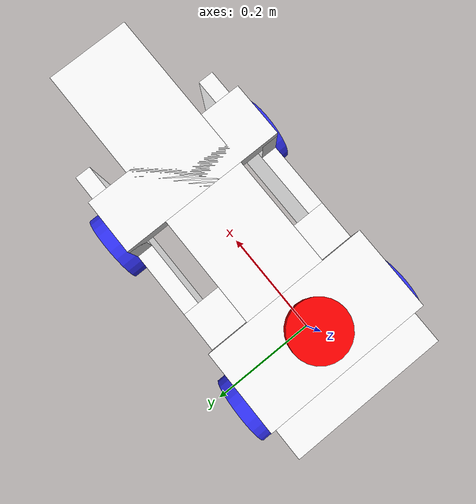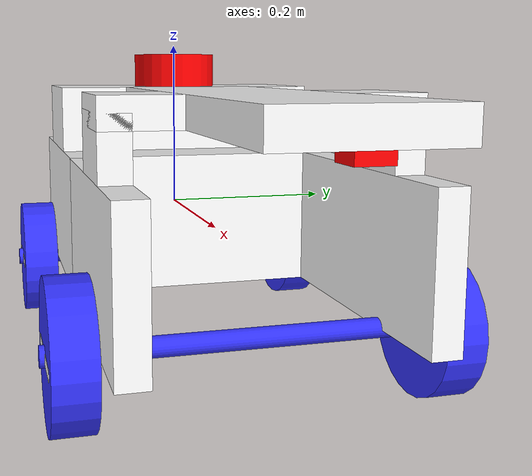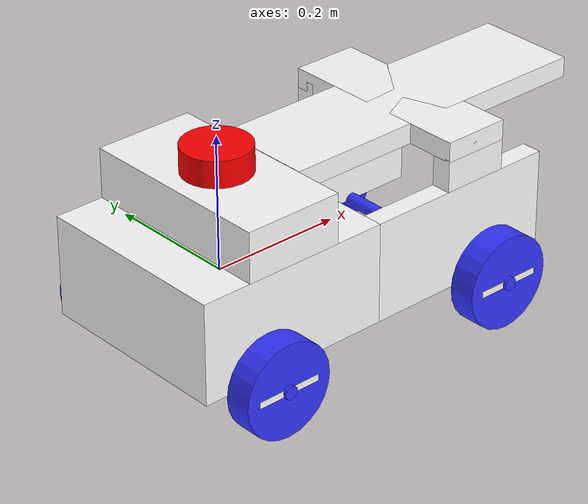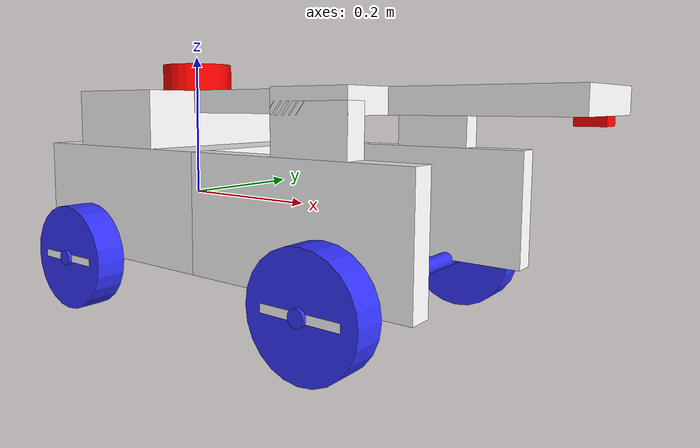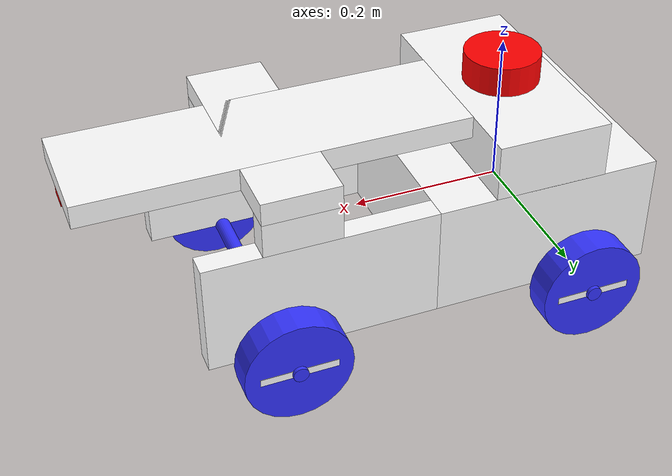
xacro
<?xml version="1.0"?>
<robot xmlns:xacro="http://www.ros.org/wiki/xacro"  name="nav_robot">

    <xacro:include filename="robot_core.xacro"/>
    <xacro:include filename="gazebo_control.xacro"/>
    <xacro:include filename="lidar.xacro"/>
    <xacro:include filename="camera.xacro"/>

</robot>

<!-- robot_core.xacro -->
<robot xmlns:xacro="http://www.ros.org/wiki/xacro">

    <xacro:include filename="$(find navigation_bot)/description/inertial_macros.xacro"/>
<!--================================================================ COLOURS ==================================================================================================== -->

    <material name="white">
        <color rgba="1 1 1 1"/>
    </material>

    <material name="orange">
        <color rgba="1 0.3 0.1 1"/>
    </material>

    <material name="blue">
        <color rgba="0.2 0.2 1 1"/>
    </material>

    <material name="red">
        <color rgba="1 0 0 1"/>
    </material>

    <material name="black">
        <color rgba="0 0 0 1"/>
    </material>

<!--================================================================ LINKS ====================================================================================================== -->

    <link name="origin"> <!-- base_link LINK -->
        <visual>
            <geometry>
                <box size="0.3 0.3 0.15"/>
            </geometry>
            <material name="white"/>
        </visual>
        <collision>
            <geometry>
                <box size="0.3 0.3 0.15"/>
            </geometry>
        </collision>
        <xacro:inertial_box mass="0.5" x="0.3" y="0.3" z="0.15">
            <origin xyz="0 0 0" rpy="0 0 0"/>
        </xacro:inertial_box>
    </link>

    <link name="base_link"> <!-- base_link LINK -->
    </link>

    <link name="Back_base_link">
        <visual>
            <origin xyz="0 0 0" rpy="${pi/2} 0 0"/>
            <axis xyz ="0 0 1"/>
            <geometry>
                <cylinder radius= "0.01" length="0.4"/>
            </geometry>
            <material name="blue"/>
        </visual>
    </link>

    <link name="Front_base_link">
        <visual>
            <origin xyz="0 0 0" rpy="${pi/2} 0 0"/>
            <axis xyz ="0 0 1"/>
            <geometry>
                <cylinder radius= "0.01" length="0.4"/>
            </geometry>
            <material name="blue"/>
        </visual>
    </link>

    <link name="LeftFront_wheel_support">
        <visual>
            <geometry>
                <box size="0.3 0.15 0.03"/>
            </geometry>
            <material name="white"/>
        </visual>
        <collision>
            <geometry>
                <box size="0.3 0.15 0.03"/>
            </geometry>
        </collision>
        <xacro:inertial_box mass="0.32" x="0.3" y="0.3" z="0.15">
            <origin xyz="0 0 0" rpy="0 0 0"/>
        </xacro:inertial_box>
    </link>

    <link name="RightFront_wheel_support">
        <visual>
            <geometry>
                <box size="0.3 0.15 0.03"/>
            </geometry>
            <material name="white"/>
        </visual>
        <collision>
            <geometry>
                <box size="0.3 0.15 0.03"/>
            </geometry>
        </collision>
        <xacro:inertial_box mass="0.32" x="0.3" y="0.3" z="0.15">
            <origin xyz="0 0 0" rpy="0 0 0"/>
        </xacro:inertial_box>
    </link>

    <link name="back_left_wheel">
        <visual>
            <geometry>
                <cylinder radius= "0.07" length="0.04"/>
            </geometry>
            <material name="blue"/>
        </visual>
        <collision>
            <geometry>
                <cylinder radius= "0.07" length="0.04"/>
            </geometry>
        </collision>
        <xacro:inertial_cylinder mass="0.1" length="0.04" radius="0.07">
            <origin xyz="0 0 0" rpy="0 0 0"/>
        </xacro:inertial_cylinder>
    </link>

    <link name="indicator_back_left_link">
        <visual>
            <geometry>
                <box size="0.1 0.01 0.001"/>
            </geometry>
            <material name="white"/>
        </visual>
    </link>

    <link name="back_right_wheel">
        <visual>
            <geometry>
                <cylinder radius= "0.07" length="0.04"/>
            </geometry>
            <material name="blue"/>
        </visual>
        <collision>
            <geometry>
                <cylinder radius= "0.07" length="0.04"/>
            </geometry>
        </collision>
        <xacro:inertial_cylinder mass="0.1" length="0.04" radius="0.07">
            <origin xyz="0 0 0" rpy="0 0 0"/>
        </xacro:inertial_cylinder>
    </link>

    <link name="indicator_back_right_link">
        <visual>
            <geometry>
                <box size="0.1 0.01 0.001"/>
            </geometry>
            <material name="white"/>
        </visual>
    </link>

    <link name="Front_left_wheel">
        <visual>
            <geometry>
                <cylinder radius= "0.07" length="0.04"/>
            </geometry>
            <material name="blue"/>
        </visual>
        <collision>
            <geometry>
                <cylinder radius= "0.07" length="0.04"/>
            </geometry>
        </collision>
        <xacro:inertial_cylinder mass="0.1" length="0.04" radius="0.07">
            <origin xyz="0 0 0" rpy="0 0 0"/>
        </xacro:inertial_cylinder>
    </link>

    <link name="Front_right_wheel">
        <visual>
            <geometry>
                <cylinder radius= "0.07" length="0.04"/>
            </geometry>
            <material name="blue"/>
        </visual>
        <collision>
            <geometry>
                <cylinder radius= "0.07" length="0.04"/>
            </geometry>
        </collision>
        <xacro:inertial_cylinder mass="0.1" length="0.04" radius="0.07">
            <origin xyz="0 0 0" rpy="0 0 0"/>
        </xacro:inertial_cylinder>
    </link>

     <link name="indicator_Front_left_link">
        <visual>
            <geometry>
                <box size="0.1 0.01 0.001"/>
            </geometry>
            <material name="white"/>
        </visual>
    </link>

    <link name="indicator_Front_right_link">
        <visual>
            <geometry>
                <box size="0.1 0.01 0.001"/>
            </geometry>
            <material name="white"/>
        </visual>
    </link>

    <link name="camera_platform_link">
        <visual>
            <geometry>
                <box size="0.5 0.15 0.03"/>
            </geometry>
            <material name="white"/>
        </visual>
        <collision>
            <geometry>
                <box size="0.5 0.15 0.03"/>
            </geometry>
        </collision>
        <xacro:inertial_box mass="0.01" x="0.3" y="0.3" z="0.15">
            <origin xyz="0 0 0" rpy="0 0 0"/>
        </xacro:inertial_box>
    </link>

    <link name="support_right">
        <visual>
            <geometry>
                <box size="0.1 0.03 0.06"/>
            </geometry>
            <material name="white"/>
        </visual>
        <collision>
            <geometry>
                <box size="0.1 0.03 0.06"/>
            </geometry>
        </collision>
        <xacro:inertial_box mass="0.5" x="0.3" y="0.3" z="0.15">
            <origin xyz="0 0 0" rpy="0 0 0"/>
        </xacro:inertial_box>
    </link>

    <link name="support_left">
        <visual>
            <geometry>
                <box size="0.1 0.03 0.06"/>
            </geometry>
            <material name="white"/>
        </visual>
        <collision>
            <geometry>
                <box size="0.1 0.03 0.06"/>
            </geometry>
        </collision>
        <xacro:inertial_box mass="0.5" x="0.3" y="0.3" z="0.15">
            <origin xyz="0 0 0" rpy="0 0 0"/>
        </xacro:inertial_box>
    </link>

    <link name="support">
        <visual>
            <geometry>
                <box size="0.1 0.3 0.03"/>
            </geometry>
            <material name="white"/>
        </visual>
    </link>

<!--================================================================ REFERENCES ================================================================================================= -->
    <gazebo reference="base_link">
        <material>Gazebo/White</material>
    </gazebo>

    <gazebo reference="Back_base_link">
        <material>Gazebo/Blue</material>
    </gazebo>

    <gazebo reference="Front_base_link">
        <material>Gazebo/Blue</material>
    </gazebo>

    <gazebo reference="LeftFront_wheel_support">
        <material>Gazebo/White</material>
    </gazebo>

    <gazebo reference="RightFront_wheel_support">
        <material>Gazebo/White</material>
    </gazebo>

    <gazebo reference="back_left_wheel">
        <mu1>1.7</mu1>
        <mu2>1.7</mu2>
        <material>Gazebo/Blue</material>
    </gazebo>

    <gazebo reference="indicator_back_left_link">
        <material>Gazebo/White</material>
    </gazebo>

    <gazebo reference="back_right_wheel">
        <mu1>1.7</mu1>
        <mu2>1.7</mu2>
        <material>Gazebo/Blue</material>
    </gazebo>

    <gazebo reference="indicator_back_right_link">
        <material>Gazebo/White</material>
    </gazebo>

    <gazebo reference="Front_left_wheel">
        <mu1>0.1</mu1>
        <mu2>0.1</mu2>
        <material>Gazebo/Blue</material>
    </gazebo>

    <gazebo reference="indicator_Front_left_link">
        <material>Gazebo/White</material>
    </gazebo>

    <gazebo reference="Front_right_wheel">
        <mu1>0.1</mu1>
        <mu2>0.1</mu2>
        <material>Gazebo/Blue</material>
    </gazebo>

    <gazebo reference="indicator_Front_right_link">
        <material>Gazebo/White</material>
    </gazebo>

    <gazebo reference="support_right">
        <material>Gazebo/White</material>
    </gazebo>

    <gazebo reference="support_left">
        <material>Gazebo/White</material>
    </gazebo>

<!--================================================================ JOINTS ===================================================================================================== -->

    <joint name="reference" type="fixed">
        <parent link="base_link"/>
        <child link="origin"/>
        <origin xyz="0.0 0 0.0"/>
    </joint>

    <joint name="Back_base_link_joint" type="fixed">
        <parent link="base_link"/>
        <child link="Back_base_link"/>
        <origin xyz="-0.05 0 -0.075"/>
    </joint>

    <joint name="Front_base_link_joint" type="fixed">
        <parent link="base_link"/>
        <child link="Front_base_link"/>
        <origin xyz="0.35 0 -0.075"/>
    </joint>

    <joint name="LeftFront_wheel_joint" type="fixed">
        <parent link="base_link"/>
        <child link="LeftFront_wheel_support"/>
        <origin xyz="0.3 -0.135 0" rpy="-${pi/2} 0 0"/>
    </joint>

    <joint name="RightFront_wheel_joint" type="fixed">
        <parent link="base_link"/>
        <child link="RightFront_wheel_support"/>
        <origin xyz="0.3 0.135 0" rpy="${pi/2} 0 0"/>
    </joint>

    <joint name="back_left_wheel_joint" type="continuous">
        <parent link="base_link"/>
        <child link="back_left_wheel"/>
        <origin xyz="-0.05 -0.175 -0.075" rpy="${pi/2} 0 0"/>
        <axis xyz ="0 0 -1"/>
    </joint>

    <joint name="indicator_back_left_joint" type="fixed">
        <parent link ="back_left_wheel"/>
        <child link ="indicator_back_left_link"/>
        <origin xyz="0 0 0.02"/>
    </joint>

    <joint name="back_right_wheel_joint" type="continuous">
        <parent link="base_link"/>
        <child link="back_right_wheel"/>
        <origin xyz="-0.05 0.175 -0.075" rpy="${pi/2} 0 0"/>
        <axis xyz ="0 0 -1"/>
    </joint>

    <joint name="indicator_back_right_joint" type="fixed">
        <parent link ="back_right_wheel"/>
        <child link ="indicator_back_right_link"/>
        <origin xyz="0 0 -0.02"/>
    </joint>

    <joint name="Front_left_wheel_joint" type="fixed">
        <parent link="base_link"/>
        <child link="Front_left_wheel"/>
        <origin xyz="0.35 -0.175 -0.075" rpy="${pi/2} 0 0"/>
        <axis xyz ="0 0 -1"/>
    </joint>

    <joint name="indicator_Front_left_joint" type="fixed">
        <parent link ="Front_left_wheel"/>
        <child link ="indicator_Front_left_link"/>
        <origin xyz="0 0 0.02"/>
    </joint>

    <joint name="Front_right_wheel_joint" type="fixed">
        <parent link="base_link"/>
        <child link="Front_right_wheel"/>
        <origin xyz="0.35 0.175 -0.075" rpy="${pi/2} 0 0"/>
        <axis xyz ="0 0 -1"/>
    </joint>

    <joint name="indicator_Front_right_joint" type="fixed">
        <parent link ="Front_right_wheel"/>
        <child link ="indicator_Front_right_link"/>
        <origin xyz="0 0 -0.02" />
    </joint>

    <joint name="camera_platform_joint" type="fixed">
        <parent link="base_link"/>
        <child link="camera_platform_link"/>
        <origin xyz="0.325 0 0.135" rpy="0 0 0"/>
    </joint>

    <joint name="support_right_joint" type="fixed">
        <parent link="support"/>
        <child link="support_right"/>
        <origin xyz="0 0.135 -0.03"/>
    </joint>

    <joint name="support_left_joint" type="fixed">
        <parent link="support"/>
        <child link="support_left"/>
        <origin xyz="0 -0.135 -0.03"/>
    </joint>

    <joint name="support_joint" type="fixed">
        <parent link="camera_platform_link"/>
        <child link="support"/>
        <origin xyz="0 0 0"/>
    </joint>

</robot>

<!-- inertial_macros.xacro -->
<robot xmlns:xacro="http://www.ros.org/wiki/xacro">

    <!-- Specify some standard inertial calculations https://en.wikipedia.org/wiki/List_of_moments_of_inertia -->
    <!-- These make use of xacro's mathematical functionality -->

    <xacro:macro name="inertial_sphere" params="mass radius *origin">
        <inertial>
            <xacro:insert_block name="origin"/>
            <mass value="${mass}" />
            <inertia ixx="${(2/5) * mass * (radius*radius)}" ixy="0.0" ixz="0.0"
                    iyy="${(2/5) * mass * (radius*radius)}" iyz="0.0"
                    izz="${(2/5) * mass * (radius*radius)}" />
        </inertial>
    </xacro:macro>

    <xacro:macro name="inertial_box" params="mass x y z *origin">
        <inertial>
            <xacro:insert_block name="origin"/>
            <mass value="${mass}" />
            <inertia ixx="${(1/12) * mass * (y*y+z*z)}" ixy="0.0" ixz="0.0"
                    iyy="${(1/12) * mass * (x*x+z*z)}" iyz="0.0"
                    izz="${(1/12) * mass * (x*x+y*y)}" />
        </inertial>
    </xacro:macro>

    <xacro:macro name="inertial_cylinder" params="mass length radius *origin">
        <inertial>
            <xacro:insert_block name="origin"/>
            <mass value="${mass}" />
            <inertia ixx="${(1/12) * mass * (3*radius*radius + length*length)}" ixy="0.0" ixz="0.0"
                    iyy="${(1/12) * mass * (3*radius*radius + length*length)}" iyz="0.0"
                    izz="${(1/2) * mass * (radius*radius)}" />
        </inertial>
    </xacro:macro>

</robot>

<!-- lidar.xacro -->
<robot xmlns:xacro="http://www.ros.org/wiki/xacro">

    <link name="platform">
        <visual>
            <geometry>
                <box size="0.15 0.3 0.075"/>
            </geometry>
            <material name="white"/>
        </visual>
        <collision>
            <geometry>
                <box size="0.15 0.15 0.075"/>
            </geometry>
        </collision>
        <xacro:inertial_box mass="0.5" x="0.3" y="0.3" z="0.15">
            <origin xyz="0 0 0" rpy="0 0 0"/>
        </xacro:inertial_box>
    </link>

    <joint name="laser_platform" type="fixed">
        <parent link="base_link"/>
        <child link="platform"/>
        <origin xyz="0 0 0.112" rpy="0 0 0"/>
    </joint>

    <joint name="laser_joint" type="fixed">
        <parent link="platform"/>
        <child link="laser_frame"/>
        <origin xyz="0 0 0.057" rpy="0 0 0"/>
    </joint>

    <link name="laser_frame">
        <visual>
            <geometry>
                <cylinder radius= "0.05" length="0.04"/>
            </geometry>
            <material name="red"/>
        </visual>
        <collision>
            <geometry>
                <cylinder radius= "0.05" length="0.04"/>
            </geometry>
        </collision>
        <xacro:inertial_cylinder mass="0.1" length="0.04" radius="0.05">
            <origin xyz="0 0 0" rpy="0 0 0"/>
        </xacro:inertial_cylinder>
    </link>

     <gazebo reference="laser_frame">
        <material>Gazebo/Red</material>

        <sensor name="laser" type="ray">
            <visualize>false</visualize>
            <update_rate>10</update_rate>
            <ray>
                <scan>
                    <horizontal>
                        <samples>360</samples>
                        <min_angle>0</min_angle>
                        <max_angle>${2*pi}</max_angle>
                    </horizontal>
                </scan>
                <range>
                    <min>0.3</min>
                    <max>12</max>
                </range>
            </ray>
            <plugin name="laser_controller" filename="libgazebo_ros_ray_sensor.so">
                <ros>
                    <argument>~/out:=scan</argument>
                </ros>
                <output_type>sensor_msgs/LaserScan</output_type>
                <frame_name>laser_frame</frame_name>
            </plugin>
        </sensor>
    </gazebo>

</robot>

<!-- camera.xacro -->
<robot xmlns:xacro="http://www.ros.org/wiki/xacro" >

    <link name="camera_link">
        <visual>
            <geometry>
                <box size="0.010 0.03 0.03"/>
            </geometry>
            <material name="red"/>
        </visual>
    </link>

    <joint name="camera_joint" type="fixed">
        <parent link="camera_platform_link"/>
        <child link="camera_link"/>
        <origin xyz="0.235 0 -0.02" rpy="0 ${pi/2} 0"/>
    </joint>

    <link name="camera_link_optical"></link>

    <joint name="camera_optical_joint" type="fixed">
        <parent link="camera_link"/>
        <child link="camera_link_optical"/>
        <origin xyz="0 0 0" rpy="${-pi/2} 0 ${-pi/2}"/>
    </joint>

    <gazebo reference="camera_link">
        <material>Gazebo/Red</material>

        <sensor name="camera" type="camera">
            <pose> 0 0 0 0 0 0 </pose>
            <visualize>true</visualize>
            <update_rate>10</update_rate>
            <camera>
                <horizontal_fov>1.089</horizontal_fov>
                <image>
                    <format>R8G8B8</format>
                    <width>640</width>
                    <height>480</height>
                </image>
                <clip>
                    <near>0.05</near>
                    <far>8.0</far>
                </clip>
            </camera>
            <plugin name="camera_controller" filename="libgazebo_ros_camera.so">
                <frame_name>camera_link_optical</frame_name>
            </plugin>
        </sensor>

    </gazebo>

</robot>
